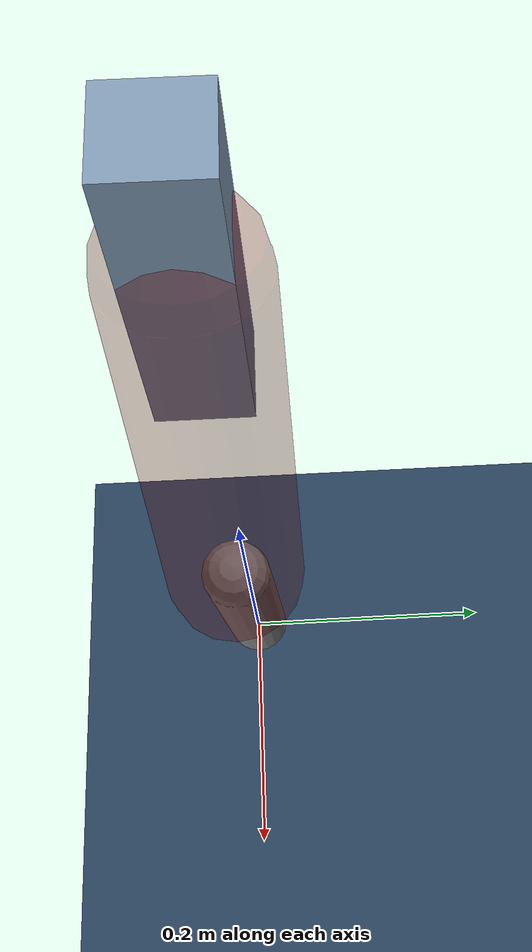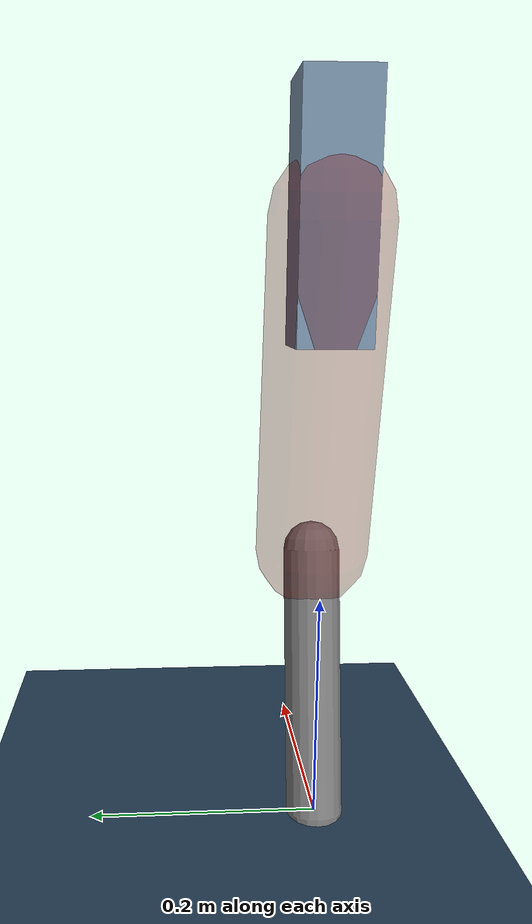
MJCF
<mujoco model="Hopper2D">
	<compiler inertiafromgeom="true" angle="radian" />
	<option timestep="0.001" integrator="implicit" cone="elliptic" solver="Newton" tolerance="1e-10" />

	<default>
		<geom contype="1" conaffinity="1" condim="3" friction="2 0.005 0.0001" solref="0.005 1" />
		<joint limited="true" damping="0.1" />
	</default>

	<asset>
		<texture name="skybox" type="skybox" builtin="gradient" rgb1=".4 .6 .8" rgb2="0 0 0" width="800" height="800" />
		<texture name="grid" type="2d" builtin="checker" rgb1=".1 .2 .3" rgb2=".2 .3 .4" width="300" height="300" mark="edge" markrgb=".2 .3 .4" />
		<material name="ground" texture="grid" texrepeat="1 1" texuniform="true" reflectance="0.1" />
		<material name="leg" rgba="0.5 0.6 0.7 1" />
	</asset>

	<worldbody>

		<geom name="floor" type="plane" size="5 5 0.25" material="ground" />

		<light directional="false" diffuse="0.8 0.8 0.8" specular="0.3 0.3 0.3" pos="0 0 2" dir="0 0 -1" />
		<light mode="targetbodycom" target="base" directional="false" diffuse="0.8 0.8 0.8" specular="0.3 0.3 0.3" pos="0 0 2" dir="0 0 -1" />

		<camera name="fixed" pos="0 -2 1" xyaxes="1 0 0 0 0 1" />
		<camera name="tracking" mode="trackcom" pos="0 -3 1" />

		<body name="root" pos="0 0 0.5130950917211506">
			<joint name="slide_x" type="slide" axis="1 0 0" range="-100 100" />
			<joint name="slide_z" type="slide" axis="0 0 1" range="0 10" />

			<body name="base" pos="0 0 0">
				<geom name="torso" type="box" size="0.03 0.03 0.1" mass="2.106" material="leg" />

				<body name="link1" pos="0 0 0" euler="0 1.3932279070779157 0">
					<joint type="hinge" axis="0 -1 0" pos="0 0 0" name="hinge1" limited="true" range="-3.14 3.14" stiffness="0" damping="0.1" />
					<geom name="thigh" type="capsule" fromto="0 0 0 0.28674969567178943 0 0" size="0.05" rgba="0.5 0 0 0.3" mass="0.9531241783138314" />

					<body name="link2" pos="0.28674969567178943 0 0" euler="0 0.3935509788237866 0">
						<joint type="hinge" axis="0 -1 0" pos="0 0 0" name="hinge2" limited="true" range="-3.14 3.14" stiffness="0" damping="0.1" />
						<geom name="shank" type="capsule" fromto="0 0 0 0.23634539604936122 0 0" size="0.025" mass="0.43127631683948897" />

					</body>
				</body>
			</body>
		</body>
	</worldbody>

	<actuator>
		<motor name="torque1" joint="hinge1" ctrlrange="-73.84252026551351 73.84252026551351" ctrllimited="true" gear="1" />
		<motor name="torque2" joint="hinge2" ctrlrange="-75.07666719279383 75.07666719279383" ctrllimited="true" gear="1" />
	</actuator>
</mujoco>
